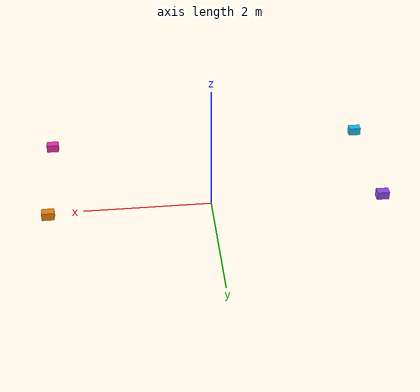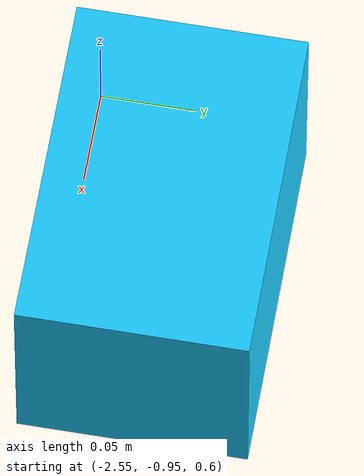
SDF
<?xml version="1.0"?>
<sdf version="1.9">
  <!-- x forward, y left, z up; sensor poses are relative to the car base. -->
  <model name="corner_radar_rig">
    <static>true</static>
    <link name="radar_front_left_mount">
      <visual name="front_left_housing">
        <pose>2.45 0.9 0.65 0 0 0</pose>
        <geometry><box><size>0.18 0.12 0.12</size></box></geometry>
        <material><ambient>1 0.55 0.05 1</ambient><diffuse>1 0.55 0.05 1</diffuse></material>
      </visual>
      <!-- Range-ray approximation of a corner radar, not an RF model. -->
      <sensor name="front_left" type="gpu_lidar">
        <pose>2.55 0.97 0.65 0 0 0.7853981634</pose>
        <always_on>true</always_on><update_rate>20</update_rate>
        <lidar>
          <scan>
            <horizontal><samples>240</samples><resolution>1</resolution><min_angle>-1.0471975512</min_angle><max_angle>1.0471975512</max_angle></horizontal>
            <vertical><samples>16</samples><resolution>1</resolution><min_angle>-0.2617993878</min_angle><max_angle>0.2617993878</max_angle></vertical>
          </scan>
          <range><min>0.3</min><max>30</max><resolution>0.05</resolution></range>
        </lidar>
      </sensor>
    </link>
    <link name="radar_front_right_mount">
      <visual name="front_right_housing">
        <pose>2.45 -0.9 0.65 0 0 0</pose>
        <geometry><box><size>0.18 0.12 0.12</size></box></geometry>
        <material><ambient>1 0.2 0.7 1</ambient><diffuse>1 0.2 0.7 1</diffuse></material>
      </visual>
      <!-- Range-ray approximation of a corner radar, not an RF model. -->
      <sensor name="front_right" type="gpu_lidar">
        <pose>2.55 -0.97 0.65 0 0 -0.7853981634</pose>
        <always_on>true</always_on><update_rate>20</update_rate>
        <lidar>
          <scan>
            <horizontal><samples>240</samples><resolution>1</resolution><min_angle>-1.0471975512</min_angle><max_angle>1.0471975512</max_angle></horizontal>
            <vertical><samples>16</samples><resolution>1</resolution><min_angle>-0.2617993878</min_angle><max_angle>0.2617993878</max_angle></vertical>
          </scan>
          <range><min>0.3</min><max>30</max><resolution>0.05</resolution></range>
        </lidar>
      </sensor>
    </link>
    <link name="radar_rear_left_mount">
      <visual name="rear_left_housing">
        <pose>-2.45 0.9 0.65 0 0 0</pose>
        <geometry><box><size>0.18 0.12 0.12</size></box></geometry>
        <material><ambient>0.6 0.3 1 1</ambient><diffuse>0.6 0.3 1 1</diffuse></material>
      </visual>
      <!-- Range-ray approximation of a corner radar, not an RF model. -->
      <sensor name="rear_left" type="gpu_lidar">
        <pose>-2.55 0.97 0.65 0 0 2.3561944902</pose>
        <always_on>true</always_on><update_rate>20</update_rate>
        <lidar>
          <scan>
            <horizontal><samples>240</samples><resolution>1</resolution><min_angle>-1.0471975512</min_angle><max_angle>1.0471975512</max_angle></horizontal>
            <vertical><samples>16</samples><resolution>1</resolution><min_angle>-0.2617993878</min_angle><max_angle>0.2617993878</max_angle></vertical>
          </scan>
          <range><min>0.3</min><max>30</max><resolution>0.05</resolution></range>
        </lidar>
      </sensor>
    </link>
    <link name="radar_rear_right_mount">
      <visual name="rear_right_housing">
        <pose>-2.45 -0.9 0.65 0 0 0</pose>
        <geometry><box><size>0.18 0.12 0.12</size></box></geometry>
        <material><ambient>0.1 0.8 1 1</ambient><diffuse>0.1 0.8 1 1</diffuse></material>
      </visual>
      <!-- Range-ray approximation of a corner radar, not an RF model. -->
      <sensor name="rear_right" type="gpu_lidar">
        <pose>-2.55 -0.97 0.65 0 0 -2.3561944902</pose>
        <always_on>true</always_on><update_rate>20</update_rate>
        <lidar>
          <scan>
            <horizontal><samples>240</samples><resolution>1</resolution><min_angle>-1.0471975512</min_angle><max_angle>1.0471975512</max_angle></horizontal>
            <vertical><samples>16</samples><resolution>1</resolution><min_angle>-0.2617993878</min_angle><max_angle>0.2617993878</max_angle></vertical>
          </scan>
          <range><min>0.3</min><max>30</max><resolution>0.05</resolution></range>
        </lidar>
      </sensor>
    </link>
  </model>
</sdf>
